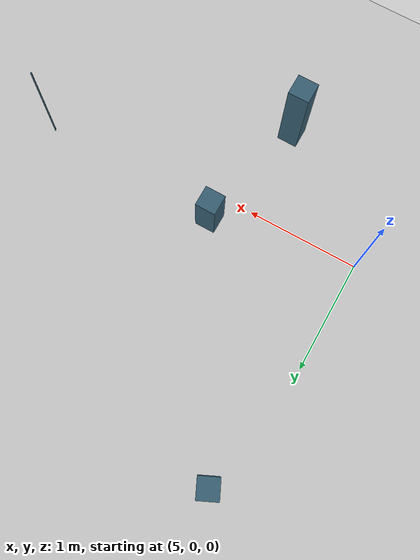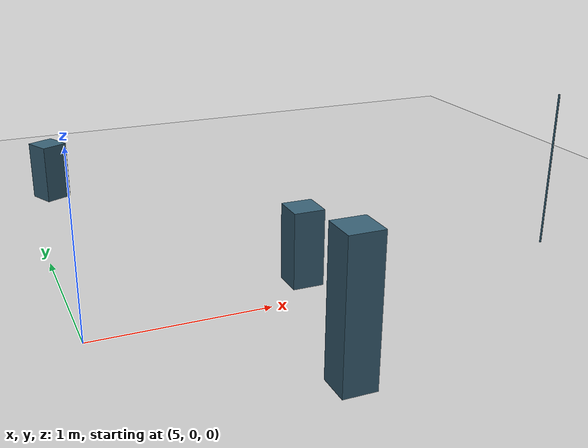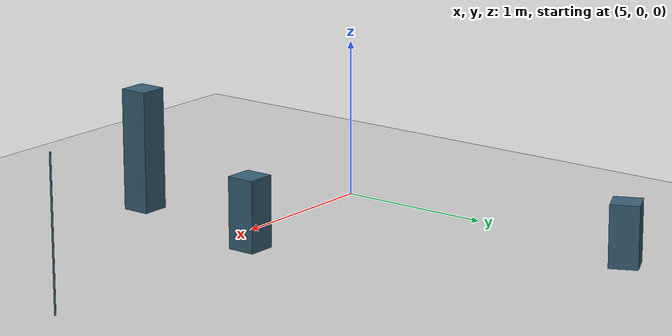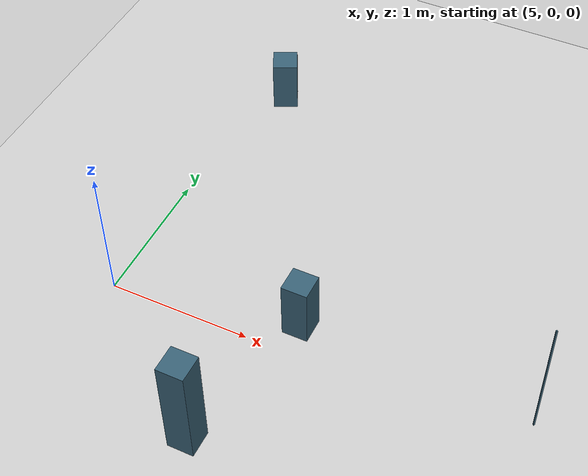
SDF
<sdf version="1.4">
 <world name="default">
  <include><uri>model://ground_plane</uri></include>
  <include><uri>model://sun</uri></include>
  <spherical_coordinates>
   <surface_model>EARTH_WGS84</surface_model>
   <latitude_deg>30.861</latitude_deg>
   <longitude_deg>120.058</longitude_deg>
   <elevation>1587</elevation>
   <heading_deg>0</heading_deg>
  </spherical_coordinates>
  <physics type="ode">
   <ode>
    <solver><type>quick</type><iters>1000</iters><sor>1.3</sor></solver>
    <constraints>
     <cfm>0</cfm>
     <erp>0.2</erp>
     <contact_max_correcting_vel>100</contact_max_correcting_vel>
     <contact_surface_layer>0.001</contact_surface_layer>
    </constraints>
   </ode>
   <max_step_size>0.002</max_step_size>
   <real_time_factor>1</real_time_factor>
   <real_time_update_rate>500</real_time_update_rate>
   <gravity>0 0 -9.7936</gravity>
  </physics>
  <model name="support_stage_1">
   <static>true</static>
   <pose>7.891413773280011 0.17032931984239014 0.46902499999999997 0 0 0.68</pose>
   <link name="link">
    <collision name="collision">
     <geometry><box><size>0.01 0.01 0.9380499999999999</size></box></geometry>
    </collision>
    <visual name="visual">
     <geometry><box><size>0.01 0.01 0.9380499999999999</size></box></geometry>
     <material><diffuse>.22 .38 .46 1</diffuse></material>
    </visual>
   </link>
  </model>
  <model name="support_stage_3">
   <static>true</static>
   <pose>6.280071640867832 0.22992830205989914 0.225 0 0 1.57</pose>
   <link name="link">
    <collision name="collision"><geometry><box><size>0.18 0.18 0.45</size></box></geometry></collision>
    <visual name="visual">
     <geometry><box><size>0.18 0.18 0.45</size></box></geometry>
     <material><diffuse>.22 .38 .46 1</diffuse></material>
    </visual>
   </link>
  </model>
  <model name="support_stage_5">
   <static>true</static>
   <pose>6.040071697940101 -0.830071640867831 0.388262125 0 0 -1.57</pose>
   <link name="link">
    <collision name="collision"><geometry><box><size>0.18 0.18 0.77652425</size></box></geometry></collision>
    <visual name="visual">
     <geometry><box><size>0.18 0.18 0.77652425</size></box></geometry>
     <material><diffuse>.22 .38 .46 1</diffuse></material>
    </visual>
   </link>
  </model>
  <model name="support_stage_7">
   <static>true</static>
   <pose>5.1998018346214465 2.184089085138453 0.195 0 0 0.44</pose>
   <link name="link">
    <collision name="collision"><geometry><box><size>0.18 0.18 0.39</size></box></geometry></collision>
    <visual name="visual">
     <geometry><box><size>0.18 0.18 0.39</size></box></geometry>
     <material><diffuse>.22 .38 .46 1</diffuse></material>
    </visual>
   </link>
  </model>
 </world>
</sdf>
